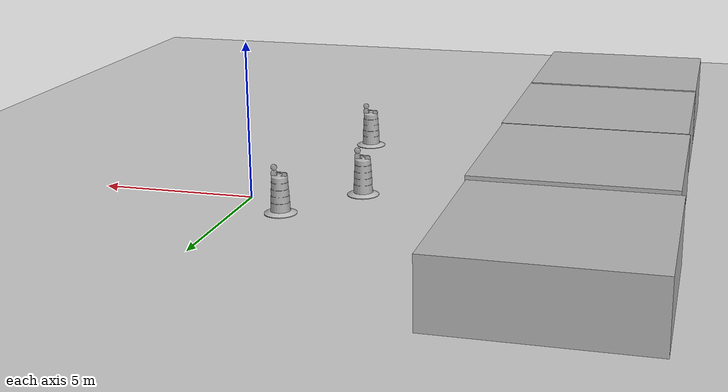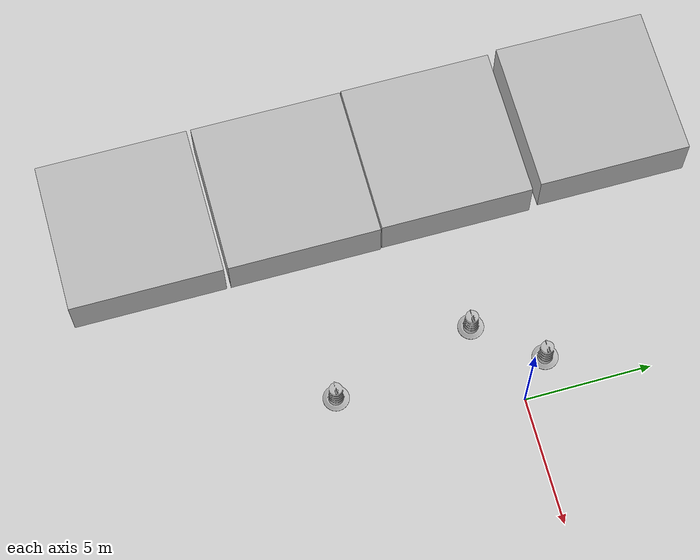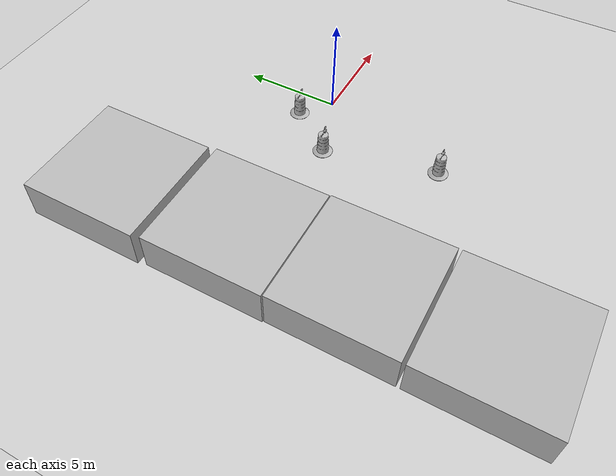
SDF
<sdf version='1.7'>
  <world name='default'>

    <!-- ================= LIGHT ================= -->
    <light name='sun' type='directional'>
      <cast_shadows>1</cast_shadows>
      <pose>0 0 10 0 0 0</pose>
      <diffuse>0.8 0.8 0.8 1</diffuse>
      <specular>0.2 0.2 0.2 1</specular>
      <direction>-0.5 0.1 -0.9</direction>
    </light>

    <!-- ================= GROUND ================= -->
    <model name='ground_plane'>
      <static>1</static>
      <link name='link'>
        <collision name='collision'>
          <geometry>
            <plane>
              <normal>0 0 1</normal>
              <size>100 100</size>
            </plane>
          </geometry>
        </collision>
        <visual name='visual'>
          <geometry>
            <plane>
              <normal>0 0 1</normal>
              <size>100 100</size>
            </plane>
          </geometry>
          <material>
            <script>
              <uri>file://media/materials/scripts/gazebo.material</uri>
              <name>Gazebo/Grey</name>
            </script>
          </material>
        </visual>
      </link>
    </model>

    <!-- ================= PHYSICS ================= -->
    <gravity>0 0 -9.8</gravity>
    <physics type='ode'>
      <max_step_size>0.001</max_step_size>
      <real_time_factor>1</real_time_factor>
      <real_time_update_rate>1000</real_time_update_rate>
    </physics>

    <!-- ================= SCENE ================= -->
    <scene>
      <ambient>0.4 0.4 0.4 1</ambient>
      <background>0.7 0.7 0.7 1</background>
      <shadows>1</shadows>
    </scene>

    <!-- ================= BOX TARGETS ================= -->
    <model name='box_target_green_clone_0'>
      <pose>-10.3598 -12.772 1 0 0 0</pose>
      <static>1</static>
      <link name='link'>
        <collision name='collision'>
          <geometry><box><size>6 6 2</size></box></geometry>
        </collision>
        <visual name='visual'>
          <geometry>
            <mesh>
              <uri>model://box_target_green/meshes/mesh.dae</uri>
            </mesh>
          </geometry>
        </visual>
      </link>
    </model>

    <model name='box_target_green_clone_1'>
      <pose>-10.3598 -6.60375 1 0 0 0</pose>
      <static>1</static>
      <link name='link'>
        <collision name='collision'>
          <geometry><box><size>6 6 2</size></box></geometry>
        </collision>
        <visual name='visual'>
          <geometry>
            <mesh>
              <uri>model://box_target_green/meshes/mesh.dae</uri>
            </mesh>
          </geometry>
        </visual>
      </link>
    </model>

    <model name='box_target_green_clone_2'>
      <pose>-10.4063 -0.551602 1 0 0 0</pose>
      <static>1</static>
      <link name='link'>
        <collision name='collision'>
          <geometry><box><size>6 6 2</size></box></geometry>
        </collision>
        <visual name='visual'>
          <geometry>
            <mesh>
              <uri>model://box_target_green/meshes/mesh.dae</uri>
            </mesh>
          </geometry>
        </visual>
      </link>
    </model>

    <model name='box_target_green_clone_3'>
      <pose>-10.5227 5.82582 1 0 0 0</pose>
      <static>1</static>
      <link name='link'>
        <collision name='collision'>
          <geometry><box><size>6 6 2</size></box></geometry>
        </collision>
        <visual name='visual'>
          <geometry>
            <mesh>
              <uri>model://box_target_green/meshes/mesh.dae</uri>
            </mesh>
          </geometry>
        </visual>
      </link>
    </model>

    <!-- ================= BARRELS ================= -->
    <model name='construction_barrel_1'>
      <pose>-1.41919 1.24181 0 0 0 0</pose>
      <static>1</static>
      <link name='link'>
        <collision name='collision'>
          <geometry>
            <mesh>
              <uri>model://construction_barrel/meshes/construction_barrel.dae</uri>
            </mesh>
          </geometry>
        </collision>
        <visual name='visual'>
          <geometry>
            <mesh>
              <uri>model://construction_barrel/meshes/construction_barrel.dae</uri>
            </mesh>
          </geometry>
        </visual>
      </link>
    </model>

    <model name='construction_barrel_2'>
      <pose>-3.34498 -1.14019 0 0 0 0</pose>
      <static>1</static>
      <link name='link'>
        <collision name='collision'>
          <geometry>
            <mesh>
              <uri>model://construction_barrel/meshes/construction_barrel.dae</uri>
            </mesh>
          </geometry>
        </collision>
        <visual name='visual'>
          <geometry>
            <mesh>
              <uri>model://construction_barrel/meshes/construction_barrel.dae</uri>
            </mesh>
          </geometry>
        </visual>
      </link>
    </model>

    <model name='construction_barrel_3'>
      <pose>-1.95138 -6.8671 0 0 0 0</pose>
      <static>1</static>
      <link name='link'>
        <collision name='collision'>
          <geometry>
            <mesh>
              <uri>model://construction_barrel/meshes/construction_barrel.dae</uri>
            </mesh>
          </geometry>
        </collision>
        <visual name='visual'>
          <geometry>
            <mesh>
              <uri>model://construction_barrel/meshes/construction_barrel.dae</uri>
            </mesh>
          </geometry>
        </visual>
      </link>
    </model>

  </world>
</sdf>
